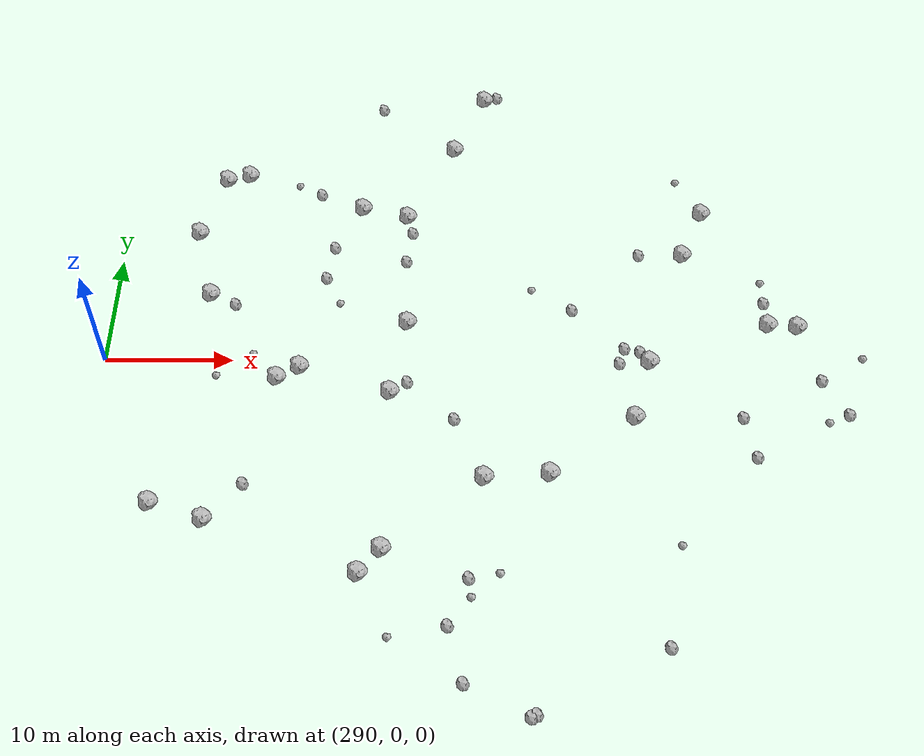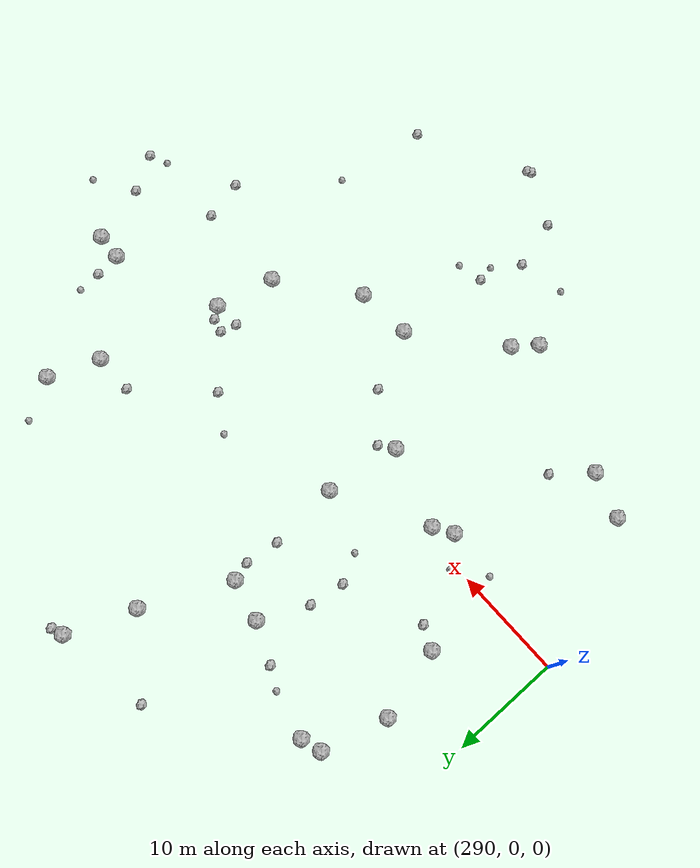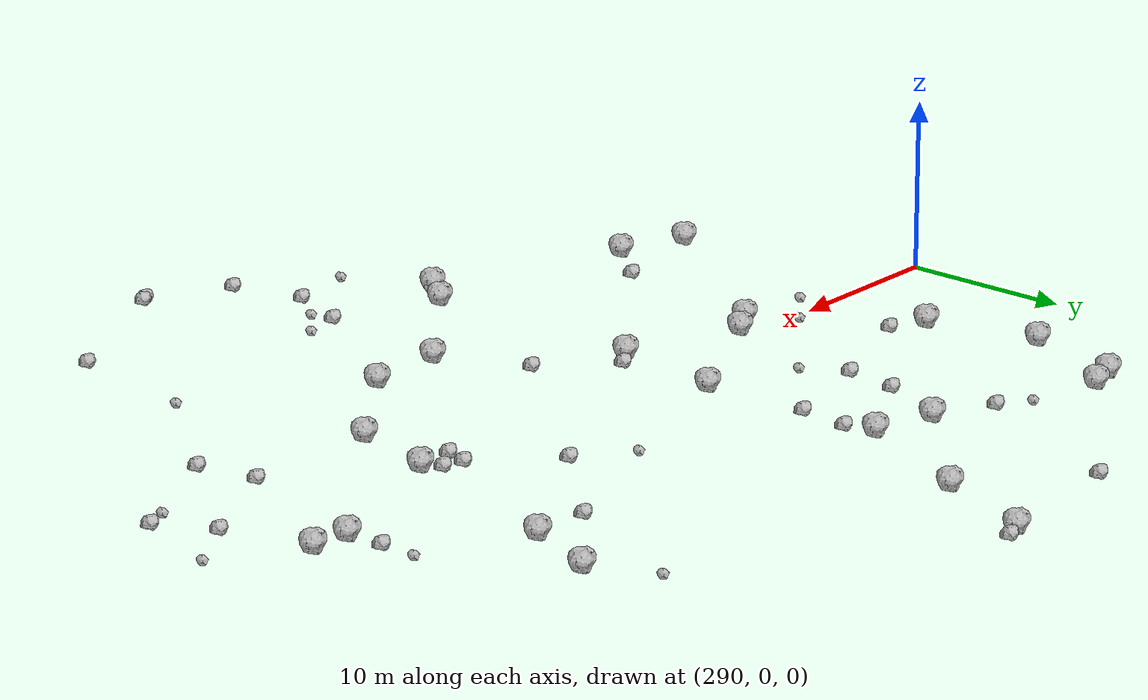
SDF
<sdf version="1.6">
 <world name="default">
  <include><uri>model://sun</uri></include>
  <model name="rock1_8_3">
   <include><uri>model://rock1</uri><pose>310.8425578269046 -18.92429864830911 0.5 0 0 0</pose></include>
  </model>
  <model name="rock1_8_4">
   <include><uri>model://rock1</uri><pose>319.7849225779788 -10.85509677921991 0.5 0 0 0</pose></include>
  </model>
  <model name="rock1_8_5">
   <include><uri>model://rock1</uri><pose>331.2776155321651 -5.378758364772821 0.5 0 0 0</pose></include>
  </model>
  <model name="rock1_8_6">
   <include><uri>model://rock1</uri><pose>312.41863144451986 -16.945118526455836 0.5 0 0 0</pose></include>
  </model>
  <model name="rock1_8_7">
   <include><uri>model://rock1</uri><pose>316.9783188223573 22.58486037602694 0.5 0 0 0</pose></include>
  </model>
  <model name="rock1_8_8">
   <include><uri>model://rock1</uri><pose>297.718093065143 18.90997101516048 0.5 0 0 0</pose></include>
  </model>
  <model name="rock1_8_9">
   <include><uri>model://rock1</uri><pose>295.9931604898518 12.929591434627177 0.5 0 0 0</pose></include>
  </model>
  <model name="rock1_8_10">
   <include><uri>model://rock1</uri><pose>313.5771179027789 3.637315030780968 0.5 0 0 0</pose></include>
  </model>
  <model name="rock1_8_11">
   <include><uri>model://rock1</uri><pose>312.4485324789183 -3.131776453639379 0.5 0 0 0</pose></include>
  </model>
  <model name="rock1_8_12">
   <include><uri>model://rock1</uri><pose>305.3099249224366 -0.7908608653550004 0.5 0 0 0</pose></include>
  </model>
  <model name="rock1_8_13">
   <include><uri>model://rock1</uri><pose>342.2390996363366 3.556221411095649 0.5 0 0 0</pose></include>
  </model>
  <model name="rock1_8_14">
   <include><uri>model://rock1</uri><pose>295.1816224005923 -13.200798251467198 0.5 0 0 0</pose></include>
  </model>
  <model name="rock1_8_15">
   <include><uri>model://rock1</uri><pose>309.4300130289977 15.741325378439164 0.5 0 0 0</pose></include>
  </model>
  <model name="rock1_8_16">
   <include><uri>model://rock1</uri><pose>299.2846428144495 -14.576261324033965 0.5 0 0 0</pose></include>
  </model>
  <model name="rock1_8_17">
   <include><uri>model://rock1</uri><pose>332.65616543431634 -0.12449927580599862 0.5 0 0 0</pose></include>
  </model>
  <model name="rock1_8_18">
   <include><uri>model://rock1</uri><pose>297.609238021097 6.407823433855775 0.5 0 0 0</pose></include>
  </model>
  <model name="rock1_8_19">
   <include><uri>model://rock1</uri><pose>313.20371336012175 14.82400941865918 0.5 0 0 0</pose></include>
  </model>
  <model name="rock1_8_20">
   <include><uri>model://rock1</uri><pose>337.7723335165696 15.331211713244144 0.5 0 0 0</pose></include>
  </model>
  <model name="rock1_8_21">
   <include><uri>model://rock1</uri><pose>299.5674265999208 19.43943395935281 0.5 0 0 0</pose></include>
  </model>
  <model name="rock1_8_22">
   <include><uri>model://rock1</uri><pose>303.60599556300036 -1.8346417387439296 0.5 0 0 0</pose></include>
  </model>
  <model name="rock1_8_23">
   <include><uri>model://rock1</uri><pose>319.52050806327645 28.698966937188864 0.5 0 0 0</pose></include>
  </model>
  <model name="rock1_8_24">
   <include><uri>model://rock1</uri><pose>324.7052838389474 -10.486006920074619 0.5 0 0 0</pose></include>
  </model>
  <model name="rock1_8_25">
   <include><uri>model://rock1</uri><pose>344.5666923489639 3.3799082200220596 0.5 0 0 0</pose></include>
  </model>
  <model name="rock1_8_26">
   <include><uri>model://rock1</uri><pose>335.88760698110997 10.770605288896284 0.5 0 0 0</pose></include>
  </model>
  <model name="rock2_8_0">
   <include><uri>model://rock2</uri><pose>313.7326815431731 -2.1709002320211894 0.3 0 0 0</pose></include>
  </model>
  <model name="rock2_8_1">
   <include><uri>model://rock2</uri><pose>326.6641363126524 5.020606834593387 0.3 0 0 0</pose></include>
  </model>
  <model name="rock2_8_2">
   <include><uri>model://rock2</uri><pose>305.8116044252312 17.36086064264716 0.3 0 0 0</pose></include>
  </model>
  <model name="rock2_8_3">
   <include><uri>model://rock2</uri><pose>299.66740987144726 5.447757336389458 0.3 0 0 0</pose></include>
  </model>
  <model name="rock2_8_4">
   <include><uri>model://rock2</uri><pose>301.8955070201515 -11.490976921982575 0.3 0 0 0</pose></include>
  </model>
  <model name="rock2_8_5">
   <include><uri>model://rock2</uri><pose>318.45211544029746 -27.33649285167244 0.3 0 0 0</pose></include>
  </model>
  <model name="rock2_8_6">
   <include><uri>model://rock2</uri><pose>306.81165846286643 8.209032379702236 0.3 0 0 0</pose></include>
  </model>
  <model name="rock2_8_7">
   <include><uri>model://rock2</uri><pose>345.88094627859357 -1.827168703652621 0.3 0 0 0</pose></include>
  </model>
  <model name="rock2_8_8">
   <include><uri>model://rock2</uri><pose>317.43989702836063 -5.615297271590563 0.3 0 0 0</pose></include>
  </model>
  <model name="rock2_8_9">
   <include><uri>model://rock2</uri><pose>330.69655462012855 1.1944724654960197 0.3 0 0 0</pose></include>
  </model>
  <model name="rock2_8_10">
   <include><uri>model://rock2</uri><pose>317.3005853241544 -23.01511633799958 0.3 0 0 0</pose></include>
  </model>
  <model name="rock2_8_11">
   <include><uri>model://rock2</uri><pose>313.641755916595 13.104689454189469 0.3 0 0 0</pose></include>
  </model>
  <model name="rock2_8_12">
   <include><uri>model://rock2</uri><pose>332.79321443481774 -24.572194946126526 0.3 0 0 0</pose></include>
  </model>
  <model name="rock2_8_13">
   <include><uri>model://rock2</uri><pose>340.2342100099759 -8.914708484761636 0.3 0 0 0</pose></include>
  </model>
  <model name="rock2_8_14">
   <include><uri>model://rock2</uri><pose>323.4592509678512 -29.562684733896184 0.3 0 0 0</pose></include>
  </model>
  <model name="rock2_8_15">
   <include><uri>model://rock2</uri><pose>320.58133102093086 29.112219716232147 0.3 0 0 0</pose></include>
  </model>
  <model name="rock2_8_16">
   <include><uri>model://rock2</uri><pose>342.07945138981427 5.842737931123338 0.3 0 0 0</pose></include>
  </model>
  <model name="rock2_8_17">
   <include><uri>model://rock2</uri><pose>313.23707500558163 10.01410355941993 0.3 0 0 0</pose></include>
  </model>
  <model name="rock2_8_18">
   <include><uri>model://rock2</uri><pose>347.62977050354203 -4.997794859755146 0.3 0 0 0</pose></include>
  </model>
  <model name="rock2_8_19">
   <include><uri>model://rock2</uri><pose>310.6198785871023 27.554438274344896 0.3 0 0 0</pose></include>
  </model>
  <model name="rock2_8_20">
   <include><uri>model://rock2</uri><pose>323.0940923215091 -29.755209297112575 0.3 0 0 0</pose></include>
  </model>
  <model name="rock2_8_21">
   <include><uri>model://rock2</uri><pose>339.4939591601353 -5.3302184004860536 0.3 0 0 0</pose></include>
  </model>
  <model name="rock2_8_22">
   <include><uri>model://rock2</uri><pose>332.2788005072377 10.811916485348341 0.3 0 0 0</pose></include>
  </model>
  <model name="rock2_8_23">
   <include><uri>model://rock2</uri><pose>330.26012819297773 -0.23375073142874925 0.3 0 0 0</pose></include>
  </model>
  <model name="rock2_8_24">
   <include><uri>model://rock2</uri><pose>318.7419684674801 -19.270975089416094 0.3 0 0 0</pose></include>
  </model>
  <model name="rock2_8_25">
   <include><uri>model://rock2</uri><pose>307.31391802576013 11.44763372154975 0.3 0 0 0</pose></include>
  </model>
  <model name="rock2_8_26">
   <include><uri>model://rock2</uri><pose>331.9285786418915 0.8761868593378459 0.3 0 0 0</pose></include>
  </model>
  <model name="rock3_8_0">
   <include><uri>model://rock3</uri><pose>301.53858835564074 0.5111693792343743 0.2 0 0 0</pose></include>
  </model>
  <model name="rock3_8_1">
   <include><uri>model://rock3</uri><pose>303.83785774719394 18.37962115606912 0.2 0 0 0</pose></include>
  </model>
  <model name="rock3_8_2">
   <include><uri>model://rock3</uri><pose>342.0113712445203 7.940698381359624 0.2 0 0 0</pose></include>
  </model>
  <model name="rock3_8_3">
   <include><uri>model://rock3</uri><pose>323.45119065832574 7.094184460464469 0.2 0 0 0</pose></include>
  </model>
  <model name="rock3_8_4">
   <include><uri>model://rock3</uri><pose>311.22618938058 -18.762194656255055 0.2 0 0 0</pose></include>
  </model>
  <model name="rock3_8_5">
   <include><uri>model://rock3</uri><pose>320.98044583915475 -18.83693129455725 0.2 0 0 0</pose></include>
  </model>
  <model name="rock3_8_6">
   <include><uri>model://rock3</uri><pose>313.1194029915989 -23.89493321647792 0.2 0 0 0</pose></include>
  </model>
  <model name="rock3_8_7">
   <include><uri>model://rock3</uri><pose>334.1042911487852 -16.48853944822259 0.2 0 0 0</pose></include>
  </model>
  <model name="rock3_8_8">
   <include><uri>model://rock3</uri><pose>349.32621817954555 0.34839465272077064 0.2 0 0 0</pose></include>
  </model>
  <model name="rock3_8_9">
   <include><uri>model://rock3</uri><pose>318.9388291740122 -20.758653305981433 0.2 0 0 0</pose></include>
  </model>
  <model name="rock3_8_10">
   <include><uri>model://rock3</uri><pose>308.06422769714214 5.623079152887442 0.2 0 0 0</pose></include>
  </model>
  <model name="rock3_8_11">
   <include><uri>model://rock3</uri><pose>335.8286063088046 19.01474967764708 0.2 0 0 0</pose></include>
  </model>
  <model name="rock3_8_12">
   <include><uri>model://rock3</uri><pose>298.8410853891938 -1.5934546848181874 0.2 0 0 0</pose></include>
  </model>
  <model name="rock3_8_13">
   <include><uri>model://rock3</uri><pose>346.021541782488 -5.718968017729285 0.2 0 0 0</pose></include>
  </model>
 </world>
</sdf>
